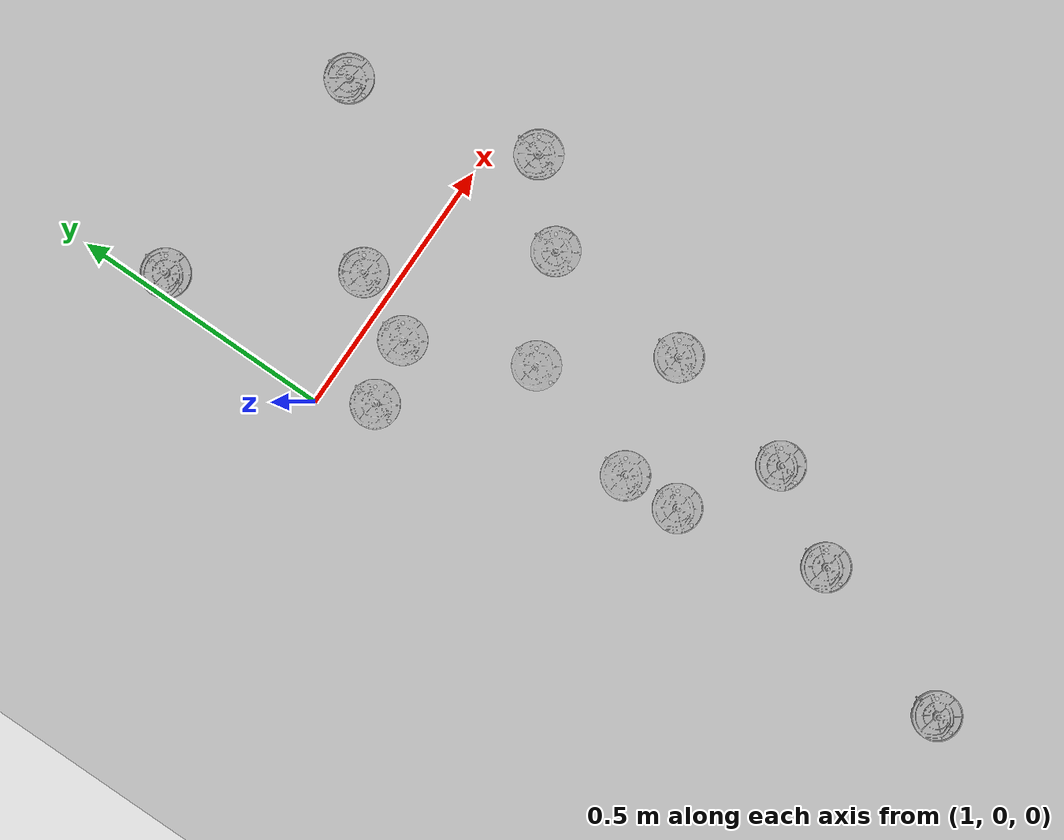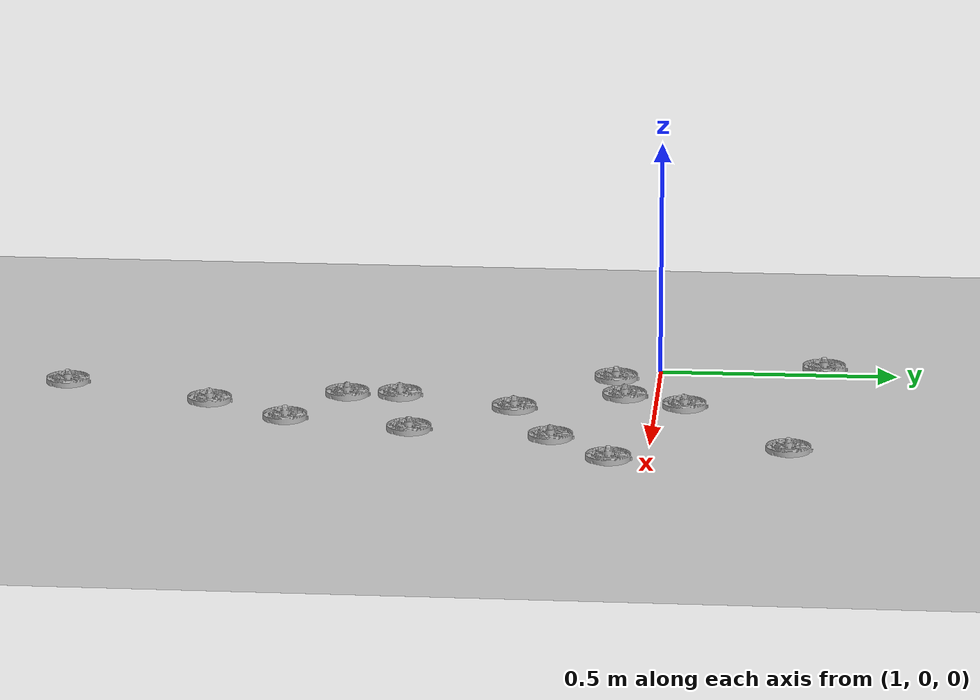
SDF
<sdf version="1.7">
 <world name="default">
  <model name="ground_plane">
   <static>1</static>
   <link name="link">
    <collision name="collision">
     <geometry><plane><normal>0 0 1</normal><size>100 100</size></plane></geometry>
     <surface>
      <contact><collide_bitmask>65535</collide_bitmask></contact>
      <friction><ode><mu>100</mu><mu2>50</mu2></ode></friction>
     </surface>
    </collision>
    <visual name="visual">
     <cast_shadows>0</cast_shadows>
     <geometry><plane><normal>0 0 1</normal><size>100 100</size></plane></geometry>
     <material>
      <script><uri>file://media/materials/scripts/gazebo.material</uri><name>Gazebo/Grey</name></script>
     </material>
    </visual>
   </link>
  </model>
  <model name="HV8_0">
   <pose>1.24144 0.059663 -1.8e-05 0.000274 0.000329 0.001035</pose>
   <static>0</static>
   <link name="HV8">
    <inertial>
     <mass>0.05</mass>
     <inertia><ixx>0.0002</ixx><ixy>0</ixy><ixz>0</ixz><iyy>0.0002</iyy><iyz>0</iyz><izz>0.0002</izz></inertia>
    </inertial>
    <collision name="collishin">
     <geometry><mesh><uri>model://HV8/meshes/HV8_1.stl</uri></mesh></geometry>
    </collision>
    <visual name="visual"><geometry><mesh><uri>model://HV8/meshes/HV8_1.stl</uri></mesh></geometry></visual>
   </link>
  </model>
  <model name="HV8_1">
   <pose>1.46888 -0.203034 3e-06 -0.000164 -2.7e-05 0.001035</pose>
   <static>0</static>
   <link name="HV8">
    <inertial>
     <mass>0.05</mass>
     <inertia><ixx>0.0002</ixx><ixy>0</ixy><ixz>0</ixz><iyy>0.0002</iyy><iyz>0</iyz><izz>0.0002</izz></inertia>
    </inertial>
    <collision name="collishin">
     <geometry><mesh><uri>model://HV8/meshes/HV8_1.stl</uri></mesh></geometry>
    </collision>
    <visual name="visual"><geometry><mesh><uri>model://HV8/meshes/HV8_1.stl</uri></mesh></geometry></visual>
   </link>
  </model>
  <model name="HV8_2">
   <pose>1.05785 -0.09186 3e-06 -0.000164 -2.7e-05 0.001031</pose>
   <static>0</static>
   <link name="HV8">
    <inertial>
     <mass>0.05</mass>
     <inertia><ixx>0.0002</ixx><ixy>0</ixy><ixz>0</ixz><iyy>0.0002</iyy><iyz>0</iyz><izz>0.0002</izz></inertia>
    </inertial>
    <collision name="collishin">
     <geometry><mesh><uri>model://HV8/meshes/HV8_1.stl</uri></mesh></geometry>
    </collision>
    <visual name="visual"><geometry><mesh><uri>model://HV8/meshes/HV8_1.stl</uri></mesh></geometry></visual>
   </link>
  </model>
  <model name="HV8_4">
   <pose>1.03902 0.346221 0.024727 0.006016 -0.003453 0.002597</pose>
   <static>0</static>
   <link name="HV8">
    <inertial>
     <mass>0.05</mass>
     <inertia><ixx>0.0002</ixx><ixy>0</ixy><ixz>0</ixz><iyy>0.0002</iyy><iyz>0</iyz><izz>0.0002</izz></inertia>
    </inertial>
    <collision name="collishin">
     <geometry><mesh><uri>model://HV8/meshes/HV8_1.stl</uri></mesh></geometry>
    </collision>
    <visual name="visual"><geometry><mesh><uri>model://HV8/meshes/HV8_1.stl</uri></mesh></geometry></visual>
   </link>
  </model>
  <model name="HV8_7">
   <pose>1.1804 -0.067487 -1.8e-05 0.000274 0.000329 0.001032</pose>
   <static>0</static>
   <link name="HV8">
    <inertial>
     <mass>0.05</mass>
     <inertia><ixx>0.0002</ixx><ixy>0</ixy><ixz>0</ixz><iyy>0.0002</iyy><iyz>0</iyz><izz>0.0002</izz></inertia>
    </inertial>
    <collision name="collishin">
     <geometry><mesh><uri>model://HV8/meshes/HV8_1.stl</uri></mesh></geometry>
    </collision>
    <visual name="visual"><geometry><mesh><uri>model://HV8/meshes/HV8_1.stl</uri></mesh></geometry></visual>
   </link>
  </model>
  <model name="HV8_8">
   <pose>1.27988 -0.291397 3e-06 -0.000164 -2.7e-05 0.001027</pose>
   <static>0</static>
   <link name="HV8">
    <inertial>
     <mass>0.05</mass>
     <inertia><ixx>0.0002</ixx><ixy>0</ixy><ixz>0</ixz><iyy>0.0002</iyy><iyz>0</iyz><izz>0.0002</izz></inertia>
    </inertial>
    <collision name="collishin">
     <geometry><mesh><uri>model://HV8/meshes/HV8_1.stl</uri></mesh></geometry>
    </collision>
    <visual name="visual"><geometry><mesh><uri>model://HV8/meshes/HV8_1.stl</uri></mesh></geometry></visual>
   </link>
  </model>
  <model name="HV8_9">
   <pose>1.20805 -0.535942 -1.8e-05 0.000274 0.000329 0.001027</pose>
   <static>0</static>
   <link name="HV8">
    <inertial>
     <mass>0.05</mass>
     <inertia><ixx>0.0002</ixx><ixy>0</ixy><ixz>0</ixz><iyy>0.0002</iyy><iyz>0</iyz><izz>0.0002</izz></inertia>
    </inertial>
    <collision name="collishin">
     <geometry><mesh><uri>model://HV8/meshes/HV8_1.stl</uri></mesh></geometry>
    </collision>
    <visual name="visual"><geometry><mesh><uri>model://HV8/meshes/HV8_1.stl</uri></mesh></geometry></visual>
   </link>
  </model>
  <model name="HV8_15">
   <pose>1.17076 -1.24342 -3e-06 -0.000159 7.4e-05 0.001029</pose>
   <static>0</static>
   <link name="HV8">
    <inertial>
     <mass>0.05</mass>
     <inertia><ixx>0.0002</ixx><ixy>0</ixy><ixz>0</ixz><iyy>0.0002</iyy><iyz>0</iyz><izz>0.0002</izz></inertia>
    </inertial>
    <collision name="collishin">
     <geometry><mesh><uri>model://HV8/meshes/HV8_1.stl</uri></mesh></geometry>
    </collision>
    <visual name="visual"><geometry><mesh><uri>model://HV8/meshes/HV8_1.stl</uri></mesh></geometry></visual>
   </link>
  </model>
  <model name="HV8_16">
   <pose>1.27759 -0.92723 3e-06 -0.000164 -2.7e-05 0.001024</pose>
   <static>0</static>
   <link name="HV8">
    <inertial>
     <mass>0.05</mass>
     <inertia><ixx>0.0002</ixx><ixy>0</ixy><ixz>0</ixz><iyy>0.0002</iyy><iyz>0</iyz><izz>0.0002</izz></inertia>
    </inertial>
    <collision name="collishin">
     <geometry><mesh><uri>model://HV8/meshes/HV8_1.stl</uri></mesh></geometry>
    </collision>
    <visual name="visual"><geometry><mesh><uri>model://HV8/meshes/HV8_1.stl</uri></mesh></geometry></visual>
   </link>
  </model>
  <model name="HV8_17">
   <pose>1.59522 -0.078658 -1.8e-05 0.000274 0.000329 0.001026</pose>
   <static>0</static>
   <link name="HV8">
    <inertial>
     <mass>0.05</mass>
     <inertia><ixx>0.0002</ixx><ixy>0</ixy><ixz>0</ixz><iyy>0.0002</iyy><iyz>0</iyz><izz>0.0002</izz></inertia>
    </inertial>
    <collision name="collishin">
     <geometry><mesh><uri>model://HV8/meshes/HV8_1.stl</uri></mesh></geometry>
    </collision>
    <visual name="visual"><geometry><mesh><uri>model://HV8/meshes/HV8_1.stl</uri></mesh></geometry></visual>
   </link>
  </model>
  <model name="HV8_18">
   <pose>1.5138 0.280021 -3e-06 -0.000159 7.4e-05 0.001025</pose>
   <static>0</static>
   <link name="HV8">
    <inertial>
     <mass>0.05</mass>
     <inertia><ixx>0.0002</ixx><ixy>0</ixy><ixz>0</ixz><iyy>0.0002</iyy><iyz>0</iyz><izz>0.0002</izz></inertia>
    </inertial>
    <collision name="collishin">
     <geometry><mesh><uri>model://HV8/meshes/HV8_1.stl</uri></mesh></geometry>
    </collision>
    <visual name="visual"><geometry><mesh><uri>model://HV8/meshes/HV8_1.stl</uri></mesh></geometry></visual>
   </link>
  </model>
  <model name="HV8_26">
   <pose>1.21285 -0.646346 -3e-06 -0.000159 7.4e-05 0.001024</pose>
   <static>0</static>
   <link name="HV8">
    <inertial>
     <mass>0.05</mass>
     <inertia><ixx>0.0002</ixx><ixy>0</ixy><ixz>0</ixz><iyy>0.0002</iyy><iyz>0</iyz><izz>0.0002</izz></inertia>
    </inertial>
    <collision name="collishin">
     <geometry><mesh><uri>model://HV8/meshes/HV8_1.stl</uri></mesh></geometry>
    </collision>
    <visual name="visual"><geometry><mesh><uri>model://HV8/meshes/HV8_1.stl</uri></mesh></geometry></visual>
   </link>
  </model>
  <model name="HV8_27">
   <pose>1.38198 -0.756191 -3e-06 -0.000159 7.4e-05 0.001023</pose>
   <static>0</static>
   <link name="HV8">
    <inertial>
     <mass>0.05</mass>
     <inertia><ixx>0.0002</ixx><ixy>0</ixy><ixz>0</ixz><iyy>0.0002</iyy><iyz>0</iyz><izz>0.0002</izz></inertia>
    </inertial>
    <collision name="collishin">
     <geometry><mesh><uri>model://HV8/meshes/HV8_1.stl</uri></mesh></geometry>
    </collision>
    <visual name="visual"><geometry><mesh><uri>model://HV8/meshes/HV8_1.stl</uri></mesh></geometry></visual>
   </link>
  </model>
  <model name="HV8_28">
   <pose>1.43792 -0.494551 -8e-06 -0.000181 0.000298 0.004489</pose>
   <static>0</static>
   <link name="HV8">
    <inertial>
     <mass>0.05</mass>
     <inertia><ixx>0.0002</ixx><ixy>0</ixy><ixz>0</ixz><iyy>0.0002</iyy><iyz>0</iyz><izz>0.0002</izz></inertia>
    </inertial>
    <collision name="collishin">
     <geometry><mesh><uri>model://HV8/meshes/HV8_1.stl</uri></mesh></geometry>
    </collision>
    <visual name="visual"><geometry><mesh><uri>model://HV8/meshes/HV8_1.stl</uri></mesh></geometry></visual>
   </link>
  </model>
 </world>
</sdf>
